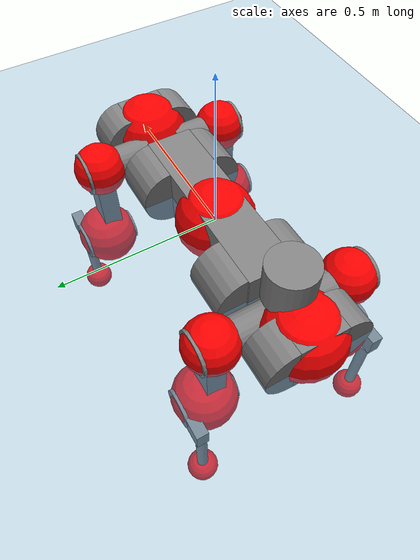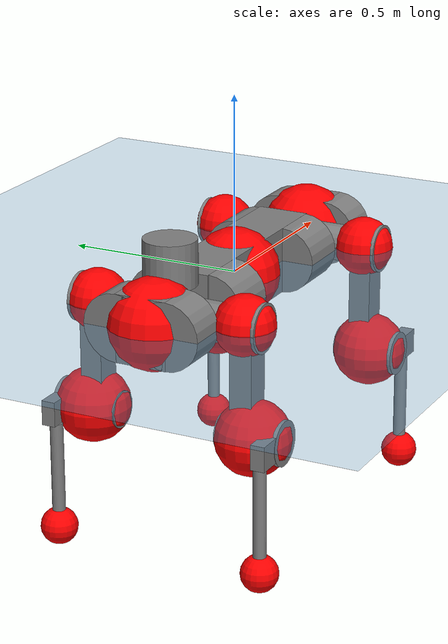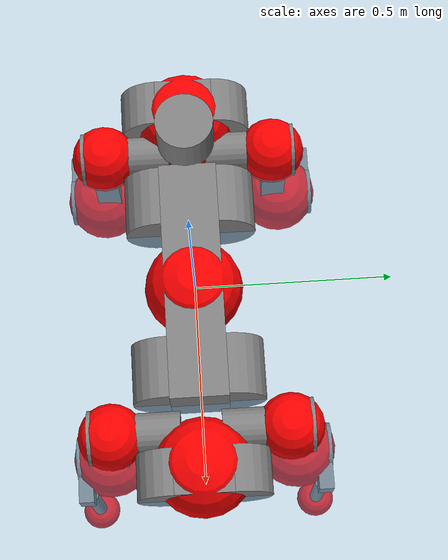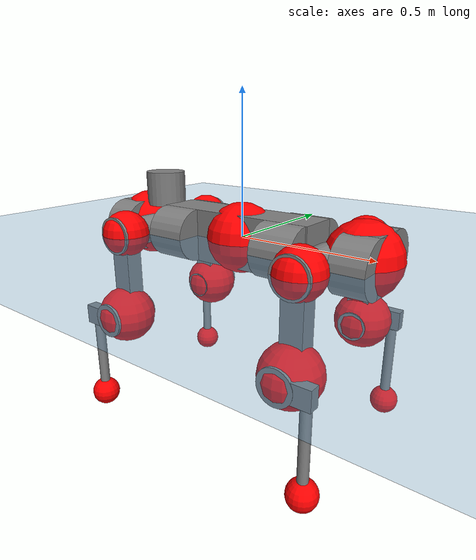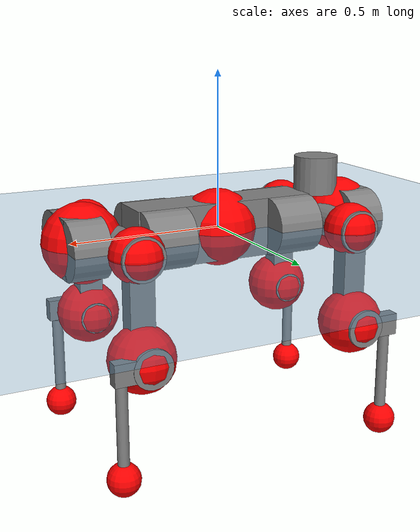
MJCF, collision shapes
<mujoco model="anymal_c">
  <compiler angle="radian" assetdir="assets" balanceinertia="true" inertiafromgeom="false"/>

  <option timestep="0.005" density="1.2" viscosity="2e-05"/>

  <size nkey="1"/>

  <visual>
    <quality shadowsize="8192"/>
    <map shadowclip="0.5"/>
  </visual>

  <default>
    <default class="/">
      <material specular="0" shininess="0.25"/>
      <geom contype="0" conaffinity="0" group="1" solref="-1000 -80"/>
      <site size="0.01 0.005 0.005" group="5"/>
      <general forcelimited="true" forcerange="-80 80" biastype="affine" gainprm="80" biasprm="0 -80 -2"/>
      <default class="anymal_c">
        <joint armature="0.01" damping="0.01" frictionloss="0.1"/>
        <default class="visual">
          <geom type="mesh" group="2"/>
          <default class="visual_zflip"/>
        </default>
        <default class="collision">
          <geom type="cylinder" group="3"/>
          <default class="foot">
            <geom size="0.03 0 0" type="sphere" condim="6" priority="1" friction="0.8 0.02 0.01" solimp="0.015 1 0.03"/>
          </default>
        </default>
      </default>
      <default class="reward_collision_sphere">
        <geom group="5" rgba="1 0 0 1"/>
      </default>
    </default>
  </default>

  <asset>
    <texture type="skybox" colorspace="auto" name="//unnamed_texture_0" builtin="gradient" rgb1="0.95 0.95 0.95" rgb2="0.95 0.95 0.95" width="100" height="600"/>
    <texture type="2d" colorspace="auto" name="texplane" builtin="checker" rgb1="0.345 0.575 0.748" rgb2="0.345 0.575 0.748" markrgb="1 1 1" width="512" height="512"/>
    <texture type="2d" colorspace="linear" name="base" file="base.png"/>
    <texture type="2d" colorspace="linear" name="top_shell" file="top_shell.png"/>
    <texture type="2d" colorspace="linear" name="bottom_shell" file="bottom_shell.png"/>
    <texture type="2d" colorspace="linear" name="remote" file="remote.png"/>
    <texture type="2d" colorspace="linear" name="hatch" file="hatch.png"/>
    <texture type="2d" colorspace="linear" name="handle" file="handle.png"/>
    <texture type="2d" colorspace="linear" name="face" file="face.png"/>
    <texture type="2d" colorspace="linear" name="battery" file="battery.png"/>
    <texture type="2d" colorspace="linear" name="lidar_cage" file="lidar_cage.png"/>
    <texture type="2d" colorspace="linear" name="depth_camera" file="depth_camera.png"/>
    <texture type="2d" colorspace="linear" name="wide_angle_camera" file="wide_angle_camera.png"/>
    <texture type="2d" colorspace="linear" name="lidar" file="lidar.png"/>
    <texture type="2d" colorspace="linear" name="drive" file="drive.png"/>
    <texture type="2d" colorspace="linear" name="hip_l" file="hip_l.png"/>
    <texture type="2d" colorspace="linear" name="shank_l" file="shank_l.png"/>
    <texture type="2d" colorspace="linear" name="foot" file="foot.png"/>
    <texture type="2d" colorspace="linear" name="thigh" file="thigh.png"/>
    <texture type="2d" colorspace="linear" name="shank_r" file="shank_r.png"/>
    <texture type="2d" colorspace="linear" name="hip_r" file="hip_r.png"/>
    <material name="MatPlane" class="/" texture="texplane" texuniform="true" texrepeat="2 2" specular="0.9" shininess="0.5"/>
    <material name="black_plastic" class="/" rgba="0.007 0.007 0.007 1"/>
    <material name="green" class="/" rgba="0.052 0.178 0.033 1"/>
    <material name="red" class="/" rgba="0.178 0.006 0.005 1"/>
    <material name="yellow" class="/" rgba="0.178 0.119 0.006 1"/>
    <material name="lwl" class="/" rgba="0.8 0.8 0.8 1"/>
    <material name="base" class="/" texture="base"/>
    <material name="top_shell" class="/" texture="top_shell"/>
    <material name="bottom_shell" class="/" texture="bottom_shell"/>
    <material name="hip_l" class="/" texture="hip_l"/>
    <material name="thigh" class="/" texture="thigh"/>
    <material name="shank_l" class="/" texture="shank_l"/>
    <material name="foot" class="/" texture="foot"/>
    <material name="hip_r" class="/" texture="hip_r"/>
    <material name="shank" class="/" texture="shank_r"/>
    <material name="hatch" class="/" texture="hatch"/>
    <material name="remote" class="/" texture="remote"/>
    <material name="handle" class="/" texture="handle"/>
    <material name="face" class="/" texture="face"/>
    <material name="depth_camera" class="/" texture="depth_camera"/>
    <material name="wide_angle_camera" class="/" texture="wide_angle_camera"/>
    <material name="battery" class="/" texture="battery"/>
    <material name="lidar_cage" class="/" texture="lidar_cage"/>
    <material name="lidar" class="/" texture="lidar"/>
    <material name="drive" class="/" texture="drive"/>
    <mesh name="base_0" class="/" file="base_0.obj"/>
    <mesh name="base_1" class="/" file="base_1.obj"/>
    <mesh name="base_2" class="/" file="base_2.obj"/>
    <mesh name="base_3" class="/" file="base_3.obj"/>
    <mesh name="base_4" class="/" file="base_4.obj"/>
    <mesh name="base_5" class="/" file="base_5.obj"/>
    <mesh name="top_shell" class="/" file="top_shell.obj"/>
    <mesh name="bottom_shell" class="/" file="bottom_shell.obj"/>
    <mesh name="remote" class="/" file="remote.obj"/>
    <mesh name="handle" class="/" file="handle.obj"/>
    <mesh name="face" class="/" file="face.obj"/>
    <mesh name="wide_angle_camera" class="/" file="wide_angle_camera.obj"/>
    <mesh name="depth_camera" class="/" file="depth_camera.obj"/>
    <mesh name="battery" class="/" file="battery.obj"/>
    <mesh name="lidar_cage" class="/" file="lidar_cage.obj"/>
    <mesh name="lidar" class="/" file="lidar.obj"/>
    <mesh name="drive" class="/" file="drive.obj"/>
    <mesh name="hip_l" class="/" file="hip_l.obj"/>
    <mesh name="thigh" class="/" file="thigh.obj"/>
    <mesh name="shank_l" class="/" file="shank_l.obj"/>
    <mesh name="foot" class="/" file="foot.obj"/>
    <mesh name="hip_r" class="/" file="hip_r.obj"/>
    <mesh name="hatch" class="/" file="hatch.obj"/>
    <mesh name="shank_r" class="/" file="shank_r.obj"/>
  </asset>

  <worldbody>
    <geom name="floor" class="/" size="100 100 0.125" type="plane" group="0" material="MatPlane"/>
    <light name="toplight_shadow" class="/" pos="0 0 5" dir="0.0990148 0.0990148 -0.990148" type="directional" ambient="0.04 0.04 0.04" diffuse="0.55 0.55 0.55" specular="0.12 0.12 0.12"/>
    <light name="toplight_fill" class="/" pos="0 0 5" dir="0.0990148 0.0990148 -0.990148" type="directional" castshadow="false" ambient="0.04 0.04 0.04" diffuse="0.3 0.3 0.3" specular="0.08 0.08 0.08"/>
    <body name="trunk" childclass="anymal_c" pos="0.00017831 -0.00275763 -0.000563436" quat="1 -2.28793e-05 2.60379e-06 -4.64186e-05">
      <inertial pos="0.00187837 -0.00285694 0.0544804" quat="0.497577 0.50733 0.493547 0.501443" mass="20.8325" diaginertia="0.67703 0.719448 0.307241"/>
      <joint name="//unnamed_joint_0" type="free" armature="0" damping="0" frictionloss="0"/>
      <geom name="//unnamed_geom_1" class="visual" material="green" mesh="base_0"/>
      <geom name="//unnamed_geom_2" class="visual" material="yellow" mesh="base_1"/>
      <geom name="//unnamed_geom_3" class="visual" material="red" mesh="base_2"/>
      <geom name="//unnamed_geom_4" class="visual" material="black_plastic" mesh="base_3"/>
      <geom name="//unnamed_geom_5" class="visual" material="lwl" mesh="base_4"/>
      <geom name="//unnamed_geom_6" class="visual" material="base" mesh="base_5"/>
      <geom name="trunk_1" class="collision" size="0.30273 0.0730727 0.0939506" type="box"/>
      <geom name="trunk_2" class="collision" size="0.0939506 0.0756825" pos="0.221816 0.0724707 0" quat="0.707107 0 0.707107 0"/>
      <geom name="trunk_3" class="collision" size="0.0939506 0.0756825" pos="-0.221816 0.0724707 0" quat="0.707107 0 0.707107 0"/>
      <geom name="trunk_4" class="collision" size="0.0939506 0.0756825" pos="0.221816 -0.0724707 0" quat="0.707107 0 0.707107 0"/>
      <geom name="trunk_5" class="collision" size="0.0939506 0.0756825" pos="-0.221816 -0.0724707 0" quat="0.707107 0 0.707107 0"/>
      <geom name="//unnamed_geom_12" class="visual" material="top_shell" mesh="top_shell"/>
      <geom name="//unnamed_geom_13" class="visual" material="bottom_shell" mesh="bottom_shell"/>
      <geom name="//unnamed_geom_14" class="visual" material="remote" mesh="remote"/>
      <geom name="//unnamed_geom_15" class="visual" material="handle" mesh="handle"/>
      <geom name="//unnamed_geom_16" class="visual" pos="0.422725 0 0" quat="1 0 0 0" material="face" mesh="face"/>
      <geom name="trunk_6" class="collision" size="0.0574143 0.0730727 0.0939506" pos="0.478816 0 0" type="box"/>
      <geom name="//unnamed_geom_18" class="collision" size="0.0939506 0.0574143" pos="0.478816 0.0724707 0" quat="0.707107 0 0.707107 0"/>
      <geom name="//unnamed_geom_19" class="collision" size="0.0939506 0.0574143" pos="0.478816 -0.0724707 0" quat="0.707107 0 0.707107 0"/>
      <geom name="//unnamed_geom_20" class="visual" pos="0.470813 0 -0.0318662" quat="0.965926 0 0.258819 0" material="depth_camera" mesh="depth_camera"/>
      <geom name="//unnamed_geom_21" class="visual" pos="0.523179 0 0.016116" material="wide_angle_camera" mesh="wide_angle_camera"/>
      <geom name="//unnamed_geom_22" class="visual_zflip" pos="-0.422725 0 0" quat="0 0 0 1" material="face" mesh="face"/>
      <geom name="trunk_7" class="collision" size="0.0574143 0.0730727 0.0939506" pos="-0.478816 0 0" quat="0 0 0 1" type="box"/>
      <geom name="//unnamed_geom_24" class="collision" size="0.0939506 0.0574143" pos="-0.478816 -0.0724707 0" quat="0 -0.707107 0 0.707107"/>
      <geom name="//unnamed_geom_25" class="collision" size="0.0939506 0.0574143" pos="-0.478816 0.0724707 0" quat="0 -0.707107 0 0.707107"/>
      <geom name="//unnamed_geom_26" class="visual" pos="-0.470813 0 -0.0318662" quat="0 -0.258819 0 0.965926" material="depth_camera" mesh="depth_camera"/>
      <geom name="//unnamed_geom_27" class="visual_zflip" pos="-0.523179 0 0.016116" quat="0 0 0 1" material="wide_angle_camera" mesh="wide_angle_camera"/>
      <geom name="//unnamed_geom_28" class="visual" material="battery" mesh="battery"/>
      <geom name="//unnamed_geom_29" class="visual" pos="0 0.0793638 0.0308428" quat="0.683013 -0.183013 0.183013 0.683013" material="depth_camera" mesh="depth_camera"/>
      <geom name="//unnamed_geom_30" class="visual" pos="0 -0.0793638 0.0308428" quat="0.683013 0.183013 0.183013 -0.683013" material="depth_camera" mesh="depth_camera"/>
      <geom name="//unnamed_geom_31" class="visual" pos="-0.371223 0 0.0791264" quat="1 0 0 0" material="lidar_cage" mesh="lidar_cage"/>
      <geom name="trunk_8" class="collision" size="0.0730727 0.0626338" pos="-0.371223 0 0.143719"/>
      <geom name="//unnamed_geom_33" class="visual" pos="-0.371223 6.0707e-06 0.153085" quat="0.707107 0 0 -0.707107" material="lidar" mesh="lidar"/>
      <geom name="//unnamed_geom_34" class="visual" pos="0.305851 0.107685 -7.11653e-10" quat="0.258819 0.965926 0 0" material="drive" mesh="drive"/>
      <geom name="//unnamed_geom_35" class="visual" pos="0.305851 -0.107685 7.11653e-10" quat="0.258819 -0.965926 0 0" material="drive" mesh="drive"/>
      <geom name="//unnamed_geom_36" class="visual" pos="-0.305851 0.107685 7.11653e-10" quat="0 0 0.965926 -0.258819" material="drive" mesh="drive"/>
      <geom name="//unnamed_geom_37" class="visual" pos="-0.305851 -0.107685 -7.11653e-10" quat="0 0 -0.965926 -0.258819" material="drive" mesh="drive"/>
      <geom name="//unnamed_geom_38" class="visual" pos="0.118302 0 0.0785882" quat="1 0 0 0" material="hatch" mesh="hatch"/>
      <geom name="//unnamed_geom_39" class="reward_collision_sphere" size="0.125268"/>
      <geom name="//unnamed_geom_40" class="reward_collision_sphere" size="0.125268" pos="0.458929 0 0"/>
      <geom name="//unnamed_geom_41" class="reward_collision_sphere" size="0.125268" pos="-0.458929 0 0"/>
      <site name="imu" pos="0.267301 0.018357 0.0360436" size="0.010439"/>
      <camera name="track" pos="0 -2.07059 0" quat="0.707107 0.707107 0 0" mode="trackcom"/>
      <camera name="ego_camera" pos="0.458929 0 -0.043062" quat="-0.5 -0.5 0.5 0.5"/>
      <body name="LF_HIP" pos="0.308747 0.110144 0.00282172" quat="0.26005 0.965595 9.93163e-05 0.000396061">
        <inertial pos="0.058863 -0.0157342 -0.00745333" quat="-0.128482 0.712362 -0.135097 0.676595" mass="3.03428" diaginertia="0.00645185 0.00557365 0.00475504"/>
        <joint name="LF_HAA" pos="0 0 0" axis="0.999998 0.00123128 0.00176668" stiffness="0.00419255" range="-0.679047 0.519136" armature="0.0102924" damping="0" frictionloss="0.117164"/>
        <geom name="//unnamed_geom_42" class="visual" pos="0 -4.18633e-05 6.87602e-06" quat="0.258819 -0.965926 0 0" material="hip_l" mesh="hip_l"/>
        <geom name="//unnamed_geom_43" class="visual" pos="0.0610886 -0.0742399 -0.0431676" quat="0.183013 -0.683013 0.683013 0.183013" material="drive" mesh="drive"/>
        <geom name="//unnamed_geom_44" class="collision" size="0.0521948 0.0730727" pos="0.0610886 -0.0123819 -0.00743358" quat="-0.353553 -0.612372 0.612372 -0.353553"/>
        <body name="LF_THIGH" pos="0.0611135 -0.0732537 -0.0445955" quat="0.183412 -0.682114 0.68389 0.182688">
          <inertial pos="0.034228 0.00218094 -0.265457" quat="0.992518 -0.0184286 -0.0839712 0.0867012" mass="3.49152" diaginertia="0.0331759 0.0357115 0.00608281"/>
          <joint name="LF_HFE" pos="0 0 0" axis="0.999911 0.0123664 0.00499249" range="-3.12148 3.19192" armature="0.0119103" damping="0.00280987" frictionloss="0.106822"/>
          <geom name="//unnamed_geom_45" class="visual" pos="-0.000307435 -4.84446e-07 0" quat="0.707107 0 0 -0.707107" material="thigh" mesh="thigh"/>
          <geom name="//unnamed_geom_46" class="collision" size="0.0678532 0.0417558" pos="0.0407937 0 0" quat="0.5 0.5 -0.5 -0.5"/>
          <geom name="//unnamed_geom_47" class="collision" size="0.0391461 0.0313169 0.147517" pos="0.0305953 0 -0.152132" quat="0.707107 0 0 -0.707107" type="box"/>
          <geom name="//unnamed_geom_48" class="visual" pos="0.10229 0 -0.306817" quat="1 0 0 0" material="drive" mesh="drive"/>
          <geom name="//unnamed_geom_49" class="collision" size="0.0521948 0.0730727" pos="0.0309012 0 -0.306817" quat="0.707107 0 0.707107 0"/>
          <geom name="//unnamed_geom_50" class="reward_collision_sphere" size="0.0835117" pos="0.0254961 0 0"/>
          <body name="LF_SHANK" pos="0.102437 -0.00275408 -0.308179" quat="1 0.000272336 0.000823464 0.000403086">
            <inertial pos="0.00796977 -0.063514 -0.0891745" quat="0.993024 -0.115277 -0.00039085 -0.0247804" mass="0.67635" diaginertia="0.0108167 0.0113206 0.0015671"/>
            <joint name="LF_KFE" pos="0 0 0" axis="0.999999 -0.000811998 -0.00118757" range="-3.18772 3.14428" armature="0.0092518" damping="0.00830505" frictionloss="0.10534"/>
            <geom name="//unnamed_geom_51" class="visual" pos="-0.000100248 -0.000534527 0" quat="0.707107 0 0 -0.707107" material="shank_l" mesh="shank_l"/>
            <geom name="LF_kfe_act" class="collision" size="0.0626338 0.0208779" pos="0.0203969 0 0" quat="0.5 0.5 -0.5 -0.5"/>
            <geom name="//unnamed_geom_53" class="collision" size="0.060023 0.0352315 0.019834" pos="0.0203969 -0.0595284 0" quat="0.5 0.5 -0.5 -0.5" type="box"/>
            <geom name="//unnamed_geom_54" class="visual" pos="0.013309 -0.0912265 -0.363842" quat="0.382683 0 0 -0.92388" material="foot" mesh="foot"/>
            <geom name="LF_calf" class="collision" size="0.0182682 0.147452" pos="0.013309 -0.0910542 -0.181921" quat="0.707107 0 0 -0.707107"/>
            <geom name="LF_foot" class="foot" size="0.0303022" pos="0.013309 -0.0910542 -0.339619" quat="0.707107 0 0 -0.707107"/>
            <geom name="//unnamed_geom_57" class="reward_collision_sphere" size="0.10439" pos="-0.0509922 0 0"/>
            <geom name="//unnamed_geom_58" class="reward_collision_sphere" size="0.0521948" pos="0.013309 -0.0910542 -0.339619"/>
            <site name="LF_foot" class="foot" pos="0.013309 -0.0910542 -0.339619" quat="0.707107 0 0 -0.707107" size="0.010439"/>
          </body>
        </body>
      </body>
      <body name="RF_HIP" pos="0.306527 -0.10971 -0.000389463" quat="0.258786 -0.965935 7.38989e-05 0.000143111">
        <inertial pos="0.0576795 0.0153501 -0.00984075" quat="0.135328 0.679169 0.127997 0.709953" mass="3.03651" diaginertia="0.00644367 0.00567415 0.00489695"/>
        <joint name="RF_HAA" pos="0 0 0" axis="0.999902 0.00143832 0.013944" range="-0.486797 0.712335" armature="0.0102894" damping="0.00891048" frictionloss="0.105489"/>
        <geom name="//unnamed_geom_59" class="visual" pos="0 4.1863e-05 6.876e-06" quat="0.258819 0.965926 0 0" material="hip_r" mesh="hip_r"/>
        <geom name="//unnamed_geom_60" class="visual" pos="0.0610886 0.0742399 -0.0431676" quat="0.183013 0.683013 0.683013 -0.183013" material="drive" mesh="drive"/>
        <geom name="//unnamed_geom_61" class="collision" size="0.0521948 0.0730727" pos="0.0610886 0.0123819 -0.00743358" quat="-0.353553 0.612372 0.612372 0.353553"/>
        <body name="RF_THIGH" pos="0.0638882 0.0768574 -0.0435358" quat="0.18355 0.683455 0.682365 -0.183239">
          <inertial pos="0.0301087 -0.00221165 -0.264338" quat="0.993984 -0.00314535 -0.0732621 0.0813582" mass="3.73258" diaginertia="0.0343644 0.0367681 0.00621912"/>
          <joint name="RF_HFE" pos="0 0 0" axis="0.999979 -0.00640262 0.000662589" range="-3.19428 3.14256" armature="0.010021" damping="0.00713744" frictionloss="0.104448"/>
          <geom name="//unnamed_geom_62" class="visual" pos="-0.000307435 -4.84446e-07 0" quat="0.707107 0 0 -0.707107" material="thigh" mesh="thigh"/>
          <geom name="//unnamed_geom_63" class="collision" size="0.0678532 0.0417558" pos="0.0407937 0 0" quat="0.5 0.5 0.5 0.5"/>
          <geom name="//unnamed_geom_64" class="collision" size="0.0391461 0.0313169 0.147517" pos="0.0305953 0 -0.152132" quat="0.707107 0 0 0.707107" type="box"/>
          <geom name="//unnamed_geom_65" class="visual" pos="0.10229 0 -0.306817" quat="1 0 0 0" material="drive" mesh="drive"/>
          <geom name="//unnamed_geom_66" class="collision" size="0.0521948 0.0730727" pos="0.0309012 0 -0.306817" quat="0.707107 0 0.707107 0"/>
          <geom name="//unnamed_geom_67" class="reward_collision_sphere" size="0.0835117" pos="0.0254961 0 0"/>
          <body name="RF_SHANK" pos="0.0996447 -0.00169004 -0.308747" quat="0.999999 0.000578713 -0.000709157 -0.00111615">
            <inertial pos="0.0064144 0.0631022 -0.0840889" quat="0.993972 0.107896 0.00311531 0.0191871" mass="0.663808" diaginertia="0.0110705 0.0109233 0.00161367"/>
            <joint name="RF_KFE" pos="0 0 0" axis="0.999918 -0.0101607 0.00779273" range="-3.15598 3.13823" armature="0.0117255" damping="0.0234626" frictionloss="0.0897909"/>
            <geom name="//unnamed_geom_68" class="visual" pos="-0.000100247 0.000534526 0" quat="0.707107 0 0 0.707107" material="shank" mesh="shank_r"/>
            <geom name="RF_kfe_act" class="collision" size="0.0626338 0.0208779" pos="0.0203969 0 0" quat="0.5 0.5 0.5 0.5"/>
            <geom name="//unnamed_geom_70" class="collision" size="0.060023 0.0352315 0.019834" pos="0.0203969 0.0595284 0" quat="0.5 0.5 0.5 0.5" type="box"/>
            <geom name="//unnamed_geom_71" class="visual" pos="0.0133089 0.0912265 -0.363842" quat="0.382683 0 0 0.92388" material="foot" mesh="foot"/>
            <geom name="RF_calf" class="collision" size="0.0182682 0.147452" pos="0.013309 0.0910542 -0.181921" quat="0.707107 0 0 0.707107"/>
            <geom name="RF_foot" class="foot" size="0.0263896" pos="0.013309 0.0910542 -0.339619" quat="0.707107 0 0 0.707107"/>
            <geom name="//unnamed_geom_74" class="reward_collision_sphere" size="0.10439" pos="-0.0509922 0 0"/>
            <geom name="//unnamed_geom_75" class="reward_collision_sphere" size="0.0521948" pos="0.013309 0.0910542 -0.339619"/>
            <site name="RF_foot" class="foot" pos="0.013309 0.0910542 -0.339619" quat="0.707107 0 0 0.707107" size="0.010439"/>
          </body>
        </body>
      </body>
      <body name="LH_HIP" pos="-0.306669 0.107483 0.00033714" quat="-0.000172883 -0.00027793 0.965887 -0.258964">
        <inertial pos="0.058195 0.0128476 -0.00722541" quat="0.136041 0.679628 0.129027 0.70919" mass="3.18319" diaginertia="0.00650486 0.00591202 0.00480701"/>
        <joint name="LH_HAA" pos="0 0 0" axis="0.999987 0.00172757 -0.00470772" range="-0.512306 0.709044" armature="0.0104828" damping="0.00897967" frictionloss="0.0991313"/>
        <geom name="//unnamed_geom_76" class="visual" pos="0 4.1863e-05 6.876e-06" quat="-0.258819 -0.965926 0 0" material="hip_r" mesh="hip_r"/>
        <geom name="//unnamed_geom_77" class="visual" pos="0.0610886 0.0742399 -0.0431676" quat="0.183013 0.683013 0.683013 -0.183013" material="drive" mesh="drive"/>
        <geom name="//unnamed_geom_78" class="collision" size="0.0521948 0.0730727" pos="0.0610886 0.0123819 -0.00743358" quat="-0.353553 0.612372 0.612372 0.353553"/>
        <body name="LH_THIGH" pos="0.0579475 0.0765682 -0.0466636" quat="0.182904 0.68311 0.682992 -0.182835">
          <inertial pos="0.0315535 0.000856532 -0.266849" quat="0.99347 0.00049957 -0.0724092 0.0881728" mass="3.60197" diaginertia="0.0337802 0.036116 0.00612428"/>
          <joint name="LH_HFE" pos="0 0 0" axis="0.999992 -0.00206071 -0.00356393" range="-3.19804 3.18393" armature="0.0101701" damping="0" frictionloss="0.10777"/>
          <geom name="//unnamed_geom_79" class="visual" pos="-0.000307435 -4.84446e-07 0" quat="0.707107 0 0 -0.707107" material="thigh" mesh="thigh"/>
          <geom name="//unnamed_geom_80" class="collision" size="0.0678532 0.0417558" pos="0.0407937 0 0" quat="0.5 0.5 -0.5 -0.5"/>
          <geom name="//unnamed_geom_81" class="collision" size="0.0391461 0.0313169 0.147517" pos="0.0305953 0 -0.152132" quat="0.707107 0 0 -0.707107" type="box"/>
          <geom name="//unnamed_geom_82" class="visual" pos="0.10229 0 -0.306817" quat="1 0 0 0" material="drive" mesh="drive"/>
          <geom name="//unnamed_geom_83" class="collision" size="0.0521948 0.0730727" pos="0.0309012 0 -0.306817" quat="0.707107 0 0.707107 0"/>
          <geom name="//unnamed_geom_84" class="reward_collision_sphere" size="0.0835117" pos="0.0254961 0 0"/>
          <body name="LH_SHANK" pos="0.100078 -0.00186185 -0.306959" quat="1 -2.88569e-05 3.17136e-05 -0.000239244">
            <inertial pos="0.00614979 0.0634884 -0.0855825" quat="0.992969 0.115549 -0.00116109 0.0256804" mass="0.705943" diaginertia="0.0119103 0.0112768 0.00166089"/>
            <joint name="LH_KFE" pos="0 0 0" axis="0.999853 -0.00106902 0.0171222" range="-3.09786 3.08578" armature="0.0107526" damping="0.000835655" frictionloss="0.101628"/>
            <geom name="//unnamed_geom_85" class="visual" pos="-0.000100247 0.000534526 0" quat="-0.707107 0 0 -0.707107" material="shank" mesh="shank_r"/>
            <geom name="LH_kfe_act" class="collision" size="0.0626338 0.0208779" pos="0.0203969 0 0" quat="0.5 0.5 -0.5 -0.5"/>
            <geom name="//unnamed_geom_87" class="collision" size="0.060023 0.0352315 0.019834" pos="0.0203969 0.0595284 0" quat="0.5 0.5 -0.5 -0.5" type="box"/>
            <geom name="//unnamed_geom_88" class="visual" pos="0.0133089 0.0912265 -0.363842" quat="-0.382683 0 0 -0.92388" material="foot" mesh="foot"/>
            <geom name="LH_calf" class="collision" size="0.0182682 0.147452" pos="0.013309 0.0910542 -0.181921" quat="0.707107 0 0 -0.707107"/>
            <geom name="LH_foot" class="foot" size="0.0332626" pos="0.013309 0.0910542 -0.339619" quat="0.707107 0 0 -0.707107"/>
            <geom name="//unnamed_geom_91" class="reward_collision_sphere" size="0.10439" pos="-0.0509922 0 0"/>
            <geom name="//unnamed_geom_92" class="reward_collision_sphere" size="0.0521948" pos="0.013309 0.0910542 -0.339619"/>
            <site name="LH_foot" class="foot" pos="0.013309 0.0910542 -0.339619" quat="0.707107 0 0 -0.707107" size="0.010439"/>
          </body>
        </body>
      </body>
      <body name="RH_HIP" pos="-0.306382 -0.105335 -0.000469364" quat="0.00126644 -0.000402074 -0.965931 -0.258798">
        <inertial pos="0.0572396 -0.0131345 -0.0115628" quat="-0.125458 0.711776 -0.13507 0.677785" mass="3.25046" diaginertia="0.00684541 0.00602697 0.00503607"/>
        <joint name="RH_HAA" pos="0 0 0" axis="0.999917 0.0117877 0.00524045" range="-0.702629 0.438994" armature="0.0102934" damping="0.0146097" frictionloss="0.100383"/>
        <geom name="//unnamed_geom_93" class="visual" pos="0 -4.18633e-05 6.87602e-06" quat="-0.258819 0.965926 0 0" material="hip_l" mesh="hip_l"/>
        <geom name="//unnamed_geom_94" class="visual" pos="0.0610886 -0.0742399 -0.0431676" quat="-0.183013 0.683013 -0.683013 -0.183013" material="drive" mesh="drive"/>
        <geom name="//unnamed_geom_95" class="collision" size="0.0521948 0.0730727" pos="0.0610886 -0.0123819 -0.00743358" quat="0.353553 0.612372 -0.612372 0.353553"/>
        <body name="RH_THIGH" pos="0.0612422 -0.0725676 -0.0438388" quat="-0.184283 0.682493 -0.683229 -0.182872">
          <inertial pos="0.0318074 -0.00267679 -0.262129" quat="0.993461 -0.00861094 -0.0782409 0.0826999" mass="3.40953" diaginertia="0.0322877 0.0347973 0.00589206"/>
          <joint name="RH_HFE" pos="0 0 0" axis="0.999917 -0.0127904 0.00149091" range="-3.16181 3.18571" armature="0.0103873" damping="0.0118813" frictionloss="0.098903"/>
          <geom name="//unnamed_geom_96" class="visual" pos="-0.000307435 -4.84446e-07 0" quat="0.707107 0 0 -0.707107" material="thigh" mesh="thigh"/>
          <geom name="//unnamed_geom_97" class="collision" size="0.0678532 0.0417558" pos="0.0407937 0 0" quat="0.5 0.5 0.5 0.5"/>
          <geom name="//unnamed_geom_98" class="collision" size="0.0391461 0.0313169 0.147517" pos="0.0305953 0 -0.152132" quat="0.707107 0 0 0.707107" type="box"/>
          <geom name="//unnamed_geom_99" class="visual" pos="0.10229 0 -0.306817" quat="1 0 0 0" material="drive" mesh="drive"/>
          <geom name="//unnamed_geom_100" class="collision" size="0.0521948 0.0730727" pos="0.0309012 0 -0.306817" quat="0.707107 0 0.707107 0"/>
          <geom name="//unnamed_geom_101" class="reward_collision_sphere" size="0.0835117" pos="0.0254961 0 0"/>
          <body name="RH_SHANK" pos="0.100405 -0.00108521 -0.308515" quat="1 -2.73824e-05 -0.000492246 0.000312398">
            <inertial pos="0.00764095 -0.0631976 -0.0865538" quat="0.99301 -0.114825 0.000464858 -0.0273162" mass="0.674107" diaginertia="0.0116498 0.0110884 0.00160718"/>
            <joint name="RH_KFE" pos="0 0 0" axis="0.99995 -0.00813109 -0.00573637" range="-3.18377 3.18804" armature="0.00899834" damping="0.0103914" frictionloss="0.106371"/>
            <geom name="//unnamed_geom_102" class="visual" pos="-0.000100248 -0.000534527 0" quat="0.707107 0 0 -0.707107" material="shank_l" mesh="shank_l"/>
            <geom name="RH_kfe_act" class="collision" size="0.0626338 0.0208779" pos="0.0203969 0 0" quat="0.5 0.5 0.5 0.5"/>
            <geom name="//unnamed_geom_104" class="collision" size="0.060023 0.0352315 0.019834" pos="0.0203969 -0.0595284 0" quat="0.5 0.5 0.5 0.5" type="box"/>
            <geom name="//unnamed_geom_105" class="visual" pos="0.013309 -0.0912265 -0.363842" quat="0.382683 0 0 -0.92388" material="foot" mesh="foot"/>
            <geom name="RH_calf" class="collision" size="0.0182682 0.147452" pos="0.013309 -0.0910542 -0.181921" quat="0.707107 0 0 0.707107"/>
            <geom name="RH_foot" class="foot" size="0.0286275" pos="0.013309 -0.0910542 -0.339619" quat="0.707107 0 0 0.707107"/>
            <geom name="//unnamed_geom_108" class="reward_collision_sphere" size="0.10439" pos="-0.0509922 0 0"/>
            <geom name="//unnamed_geom_109" class="reward_collision_sphere" size="0.0521948" pos="0.013309 -0.0910542 -0.339619"/>
            <site name="RH_foot" class="foot" pos="0.013309 -0.0910542 -0.339619" quat="0.707107 0 0 0.707107" size="0.010439"/>
          </body>
        </body>
      </body>
    </body>
  </worldbody>

  <contact>
    <pair class="/" geom1="floor" geom2="LF_foot" name="//unnamed_contact_0"/>
    <pair class="/" geom1="floor" geom2="RF_foot" name="//unnamed_contact_1"/>
    <pair class="/" geom1="floor" geom2="LH_foot" name="//unnamed_contact_2"/>
    <pair class="/" geom1="floor" geom2="RH_foot" name="//unnamed_contact_3"/>
  </contact>

  <actuator>
    <general name="LF_HAA" class="/" joint="LF_HAA" forcerange="-89.9512 89.9512" gainprm="89.1296" biasprm="0 -89.1296 -2.16935"/>
    <general name="LF_HFE" class="/" joint="LF_HFE" forcerange="-76.3605 76.3605" gainprm="89.1296" biasprm="0 -89.1296 -2.16935"/>
    <general name="LF_KFE" class="/" joint="LF_KFE" forcerange="-86.823 86.823" gainprm="89.1296" biasprm="0 -89.1296 -2.16935"/>
    <general name="RF_HAA" class="/" joint="RF_HAA" forcerange="-92.0895 92.0895" gainprm="89.1296" biasprm="0 -89.1296 -2.16935"/>
    <general name="RF_HFE" class="/" joint="RF_HFE" forcerange="-92.8634 92.8634" gainprm="89.1296" biasprm="0 -89.1296 -2.16935"/>
    <general name="RF_KFE" class="/" joint="RF_KFE" forcerange="-91.8769 91.8769" gainprm="89.1296" biasprm="0 -89.1296 -2.16935"/>
    <general name="LH_HAA" class="/" joint="LH_HAA" forcerange="-87.0099 87.0099" gainprm="89.1296" biasprm="0 -89.1296 -2.16935"/>
    <general name="LH_HFE" class="/" joint="LH_HFE" forcerange="-80.6359 80.6359" gainprm="89.1296" biasprm="0 -89.1296 -2.16935"/>
    <general name="LH_KFE" class="/" joint="LH_KFE" forcerange="-79.8414 79.8414" gainprm="89.1296" biasprm="0 -89.1296 -2.16935"/>
    <general name="RH_HAA" class="/" joint="RH_HAA" forcerange="-76.1185 76.1185" gainprm="89.1296" biasprm="0 -89.1296 -2.16935"/>
    <general name="RH_HFE" class="/" joint="RH_HFE" forcerange="-86.4553 86.4553" gainprm="89.1296" biasprm="0 -89.1296 -2.16935"/>
    <general name="RH_KFE" class="/" joint="RH_KFE" forcerange="-84.1926 84.1926" gainprm="89.1296" biasprm="0 -89.1296 -2.16935"/>
  </actuator>

  <sensor>
    <gyro site="imu" name="imu_angular_velocity"/>
    <velocimeter site="imu" name="imu_linear_velocity"/>
    <framelinvel objtype="site" objname="LF_foot" name="LF_foot_global_linear_velocity"/>
    <framelinvel objtype="site" objname="RF_foot" name="RF_foot_global_linear_velocity"/>
    <framelinvel objtype="site" objname="LH_foot" name="LH_foot_global_linear_velocity"/>
    <framelinvel objtype="site" objname="RH_foot" name="RH_foot_global_linear_velocity"/>
  </sensor>

  <keyframe>
    <key name="home" qpos="0 0 0.55 1 0 0 0 0 0.4 -0.8 0 -0.4 0.8 0 -0.4 0.8 0 0.4 -0.8"/>
  </keyframe>
</mujoco>
